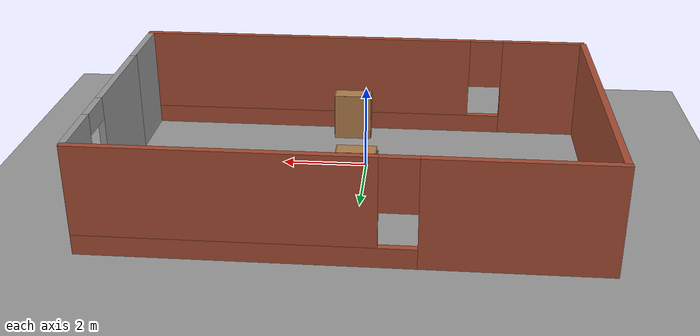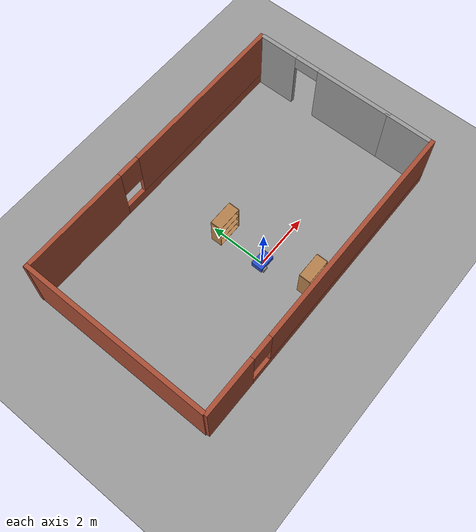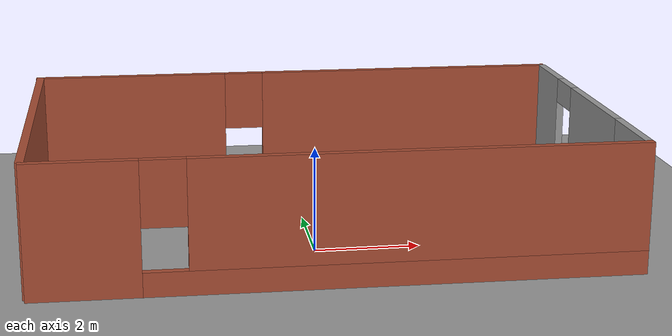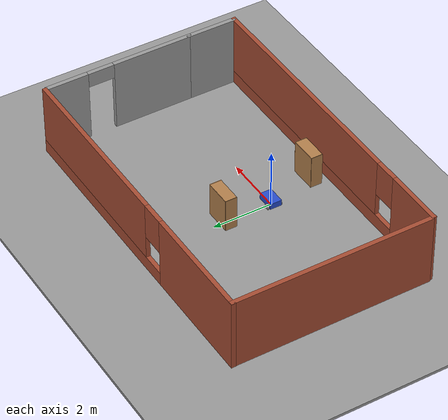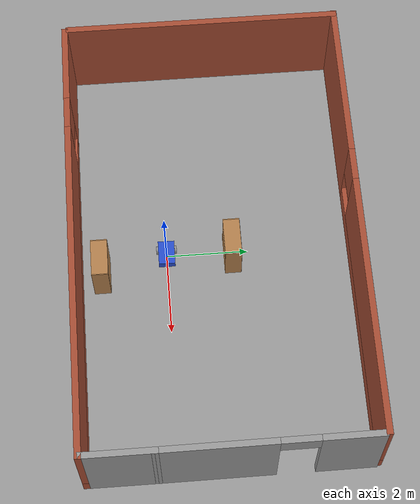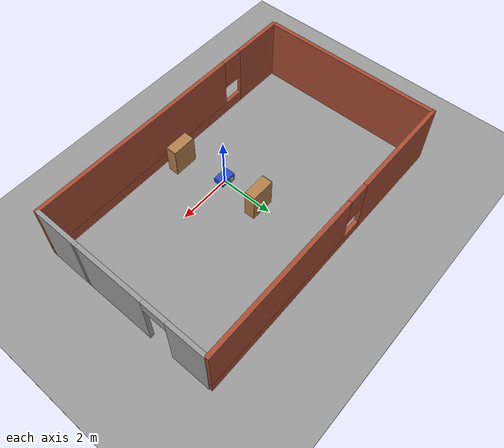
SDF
<sdf version="1.7">
 <world name="default">
  <light name="sun" type="directional">
   <pose>0 0 10 0 -0 0</pose>
   <diffuse>0.8 0.8 0.8 1</diffuse>
   <specular>0.2 0.2 0.2 1</specular>
   <attenuation>
    <range>1000</range>
    <constant>0.9</constant>
    <linear>0.01</linear>
    <quadratic>0.001</quadratic>
   </attenuation>
   <direction>-0.5 0.1 -0.9</direction>
   <spot><inner_angle>0</inner_angle><outer_angle>0</outer_angle><falloff>0</falloff></spot>
  </light>
  <model name="ground_plane">
   <static>1</static>
   <link name="link">
    <collision name="collision">
     <geometry><plane><normal>0 0 1</normal><size>100 100</size></plane></geometry>
     <surface><friction><ode><mu>100</mu><mu2>50</mu2></ode></friction></surface>
    </collision>
    <visual name="visual">
     <cast_shadows>0</cast_shadows>
     <geometry><plane><normal>0 0 1</normal><size>100 100</size></plane></geometry>
     <material>
      <script><uri>file://media/materials/scripts/gazebo.material</uri><name>Gazebo/Grey</name></script>
     </material>
    </visual>
   </link>
  </model>
  <gravity>0 0 -9.8</gravity>
  <magnetic_field>6e-06 2.3e-05 -4.2e-05</magnetic_field>
  <atmosphere type="adiabatic"/>
  <physics type="ode">
   <max_step_size>0.001</max_step_size>
   <real_time_factor>1</real_time_factor>
   <real_time_update_rate>1000</real_time_update_rate>
  </physics>
  <scene><ambient>0.4 0.4 0.4 1</ambient><background>0.7 0.7 0.7 1</background><shadows>1</shadows></scene>
  <audio><device>default</device></audio>
  <spherical_coordinates>
   <surface_model>EARTH_WGS84</surface_model>
   <latitude_deg>0</latitude_deg>
   <longitude_deg>0</longitude_deg>
   <elevation>0</elevation>
   <heading_deg>0</heading_deg>
  </spherical_coordinates>
  <model name="my_robot">
   <link name="base_footprint">
    <inertial>
     <pose>0.018182 0 0.186364 0 -0 0</pose>
     <mass>5.5</mass>
     <inertia>
      <ixx>0.678894</ixx>
      <ixy>0</ixy>
      <ixz>0.0136364</ixz>
      <iyy>0.897076</iyy>
      <iyz>0</iyz>
      <izz>0.353515</izz>
     </inertia>
    </inertial>
    <collision name="base_footprint_fixed_joint_lump__base_link_collision">
     <pose>0 0 0.2 0 -0 0</pose>
     <geometry><box><size>0.6 0.4 0.2</size></box></geometry>
    </collision>
    <collision name="base_footprint_fixed_joint_lump__caster_wheel_link_collision_1">
     <pose>0.2 0 0.05 0 -0 0</pose>
     <geometry><sphere><radius>0.05</radius></sphere></geometry>
     <surface><friction><ode><mu>0.1</mu><mu2>0.1</mu2></ode></friction></surface>
    </collision>
    <visual name="base_footprint_fixed_joint_lump__base_link_visual">
     <pose>0 0 0.2 0 -0 0</pose>
     <geometry><box><size>0.6 0.4 0.2</size></box></geometry>
     <material>
      <script><name>Gazebo/Blue</name><uri>file://media/materials/scripts/gazebo.material</uri></script>
     </material>
    </visual>
    <visual name="base_footprint_fixed_joint_lump__caster_wheel_link_visual_1">
     <pose>0.2 0 0.05 0 -0 0</pose>
     <geometry><sphere><radius>0.05</radius></sphere></geometry>
     <material>
      <script><name>Gazebo/Grey</name><uri>file://media/materials/scripts/gazebo.material</uri></script>
     </material>
    </visual>
   </link>
   <joint name="base_left_wheel_joint" type="revolute">
    <pose relative_to="base_footprint">-0.15 0.225 0.1 0 -0 0</pose>
    <parent>base_footprint</parent>
    <child>left_wheel_link</child>
    <axis>
     <xyz>0 1 0</xyz>
     <limit><lower>-1e+16</lower><upper>1e+16</upper></limit>
     <dynamics><spring_reference>0</spring_reference><spring_stiffness>0</spring_stiffness></dynamics>
    </axis>
   </joint>
   <link name="left_wheel_link">
    <pose relative_to="base_left_wheel_joint">0 0 0 0 -0 0</pose>
    <inertial>
     <pose>0 0 0 1.5708 -0 0</pose>
     <mass>1</mass>
     <inertia><ixx>0.0108333</ixx><ixy>0</ixy><ixz>0</ixz><iyy>0.0108333</iyy><iyz>0</iyz><izz>0.02</izz></inertia>
    </inertial>
    <collision name="left_wheel_link_collision">
     <pose>0 0 0 1.5708 -0 0</pose>
     <geometry><cylinder><length>0.05</length><radius>0.1</radius></cylinder></geometry>
    </collision>
    <visual name="left_wheel_link_visual">
     <pose>0 0 0 1.5708 -0 0</pose>
     <geometry><cylinder><length>0.05</length><radius>0.1</radius></cylinder></geometry>
     <material>
      <script><name>Gazebo/Grey</name><uri>file://media/materials/scripts/gazebo.material</uri></script>
     </material>
    </visual>
   </link>
   <joint name="base_right_wheel_joint" type="revolute">
    <pose relative_to="base_footprint">-0.15 -0.225 0.1 0 -0 0</pose>
    <parent>base_footprint</parent>
    <child>right_wheel_link</child>
    <axis>
     <xyz>0 1 0</xyz>
     <limit><lower>-1e+16</lower><upper>1e+16</upper></limit>
     <dynamics><spring_reference>0</spring_reference><spring_stiffness>0</spring_stiffness></dynamics>
    </axis>
   </joint>
   <link name="right_wheel_link">
    <pose relative_to="base_right_wheel_joint">0 0 0 0 -0 0</pose>
    <inertial>
     <pose>0 0 0 1.5708 -0 0</pose>
     <mass>1</mass>
     <inertia><ixx>0.0108333</ixx><ixy>0</ixy><ixz>0</ixz><iyy>0.0108333</iyy><iyz>0</iyz><izz>0.02</izz></inertia>
    </inertial>
    <collision name="right_wheel_link_collision">
     <pose>0 0 0 1.5708 -0 0</pose>
     <geometry><cylinder><length>0.05</length><radius>0.1</radius></cylinder></geometry>
    </collision>
    <visual name="right_wheel_link_visual">
     <pose>0 0 0 1.5708 -0 0</pose>
     <geometry><cylinder><length>0.05</length><radius>0.1</radius></cylinder></geometry>
     <material>
      <script><name>Gazebo/Grey</name><uri>file://media/materials/scripts/gazebo.material</uri></script>
     </material>
    </visual>
   </link>
   <static>0</static>
   <plugin name="diff_drive_controller" filename="libgazebo_ros_diff_drive.so">
    <update_rate>50</update_rate>
    <left_joint>base_left_wheel_joint</left_joint>
    <right_joint>base_right_wheel_joint</right_joint>
    <wheel_separation>0.45</wheel_separation>
    <wheel_diameter>0.2</wheel_diameter>
    <torque>5.0</torque>
    <command_topic>cmd_vel</command_topic>
    <publish_odom>1</publish_odom>
    <publish_odom_tf>1</publish_odom_tf>
    <publish_wheel_tf>1</publish_wheel_tf>
    <odometry_topic>odom</odometry_topic>
    <odometry_frame>odom</odometry_frame>
    <robot_base_frame>base_footprint</robot_base_frame>
   </plugin>
   <pose>0.009824 0.001229 0 0 0 -0.004578</pose>
  </model>
  <model name="bookshelf">
   <static>1</static>
   <link name="link">
    <inertial><mass>1</mass></inertial>
    <collision name="back">
     <pose>0 0.005 0.6 0 -0 0</pose>
     <geometry><box><size>0.9 0.01 1.2</size></box></geometry>
    </collision>
    <visual name="visual1">
     <pose>0 0.005 0.6 0 -0 0</pose>
     <geometry><box><size>0.9 0.01 1.2</size></box></geometry>
     <material>
      <script><uri>file://media/materials/scripts/gazebo.material</uri><name>Gazebo/Wood</name></script>
     </material>
    </visual>
    <collision name="left_side">
     <pose>0.45 -0.195 0.6 0 -0 0</pose>
     <geometry><box><size>0.02 0.4 1.2</size></box></geometry>
    </collision>
    <visual name="visual2">
     <pose>0.45 -0.195 0.6 0 -0 0</pose>
     <geometry><box><size>0.02 0.4 1.2</size></box></geometry>
     <material>
      <script><uri>file://media/materials/scripts/gazebo.material</uri><name>Gazebo/Wood</name></script>
     </material>
    </visual>
    <collision name="right_side">
     <pose>-0.45 -0.195 0.6 0 -0 0</pose>
     <geometry><box><size>0.02 0.4 1.2</size></box></geometry>
    </collision>
    <visual name="visual3">
     <pose>-0.45 -0.195 0.6 0 -0 0</pose>
     <geometry><box><size>0.02 0.4 1.2</size></box></geometry>
     <material>
      <script><uri>file://media/materials/scripts/gazebo.material</uri><name>Gazebo/Wood</name></script>
     </material>
    </visual>
    <collision name="bottom">
     <pose>0 -0.195 0.03 0 -0 0</pose>
     <geometry><box><size>0.88 0.4 0.06</size></box></geometry>
    </collision>
    <visual name="visual4">
     <pose>0 -0.195 0.03 0 -0 0</pose>
     <geometry><box><size>0.88 0.4 0.06</size></box></geometry>
     <material>
      <script><uri>file://media/materials/scripts/gazebo.material</uri><name>Gazebo/Wood</name></script>
     </material>
    </visual>
    <collision name="top">
     <pose>0 -0.195 1.19 0 -0 0</pose>
     <geometry><box><size>0.88 0.4 0.02</size></box></geometry>
    </collision>
    <visual name="visual5">
     <pose>0 -0.195 1.19 0 -0 0</pose>
     <geometry><box><size>0.88 0.4 0.02</size></box></geometry>
     <material>
      <script><uri>file://media/materials/scripts/gazebo.material</uri><name>Gazebo/Wood</name></script>
     </material>
    </visual>
    <collision name="low_shelf">
     <pose>0 -0.195 0.43 0 -0 0</pose>
     <geometry><box><size>0.88 0.4 0.02</size></box></geometry>
    </collision>
    <visual name="visual6">
     <pose>0 -0.195 0.43 0 -0 0</pose>
     <geometry><box><size>0.88 0.4 0.02</size></box></geometry>
     <material>
      <script><uri>file://media/materials/scripts/gazebo.material</uri><name>Gazebo/Wood</name></script>
     </material>
    </visual>
    <collision name="high_shelf">
     <pose>0 -0.195 0.8 0 -0 0</pose>
     <geometry><box><size>0.88 0.4 0.02</size></box></geometry>
    </collision>
    <visual name="visual7">
     <pose>0 -0.195 0.8 0 -0 0</pose>
     <geometry><box><size>0.88 0.4 0.02</size></box></geometry>
     <material>
      <script><uri>file://media/materials/scripts/gazebo.material</uri><name>Gazebo/Wood</name></script>
     </material>
    </visual>
   </link>
   <pose>0.106556 1.80778 0 0 -0 0</pose>
  </model>
  <model name="bookshelf_0">
   <static>1</static>
   <link name="link">
    <inertial><mass>1</mass></inertial>
    <collision name="back">
     <pose>0 0.005 0.6 0 -0 0</pose>
     <geometry><box><size>0.9 0.01 1.2</size></box></geometry>
    </collision>
    <visual name="visual1">
     <pose>0 0.005 0.6 0 -0 0</pose>
     <geometry><box><size>0.9 0.01 1.2</size></box></geometry>
     <material>
      <script><uri>file://media/materials/scripts/gazebo.material</uri><name>Gazebo/Wood</name></script>
     </material>
    </visual>
    <collision name="left_side">
     <pose>0.45 -0.195 0.6 0 -0 0</pose>
     <geometry><box><size>0.02 0.4 1.2</size></box></geometry>
    </collision>
    <visual name="visual2">
     <pose>0.45 -0.195 0.6 0 -0 0</pose>
     <geometry><box><size>0.02 0.4 1.2</size></box></geometry>
     <material>
      <script><uri>file://media/materials/scripts/gazebo.material</uri><name>Gazebo/Wood</name></script>
     </material>
    </visual>
    <collision name="right_side">
     <pose>-0.45 -0.195 0.6 0 -0 0</pose>
     <geometry><box><size>0.02 0.4 1.2</size></box></geometry>
    </collision>
    <visual name="visual3">
     <pose>-0.45 -0.195 0.6 0 -0 0</pose>
     <geometry><box><size>0.02 0.4 1.2</size></box></geometry>
     <material>
      <script><uri>file://media/materials/scripts/gazebo.material</uri><name>Gazebo/Wood</name></script>
     </material>
    </visual>
    <collision name="bottom">
     <pose>0 -0.195 0.03 0 -0 0</pose>
     <geometry><box><size>0.88 0.4 0.06</size></box></geometry>
    </collision>
    <visual name="visual4">
     <pose>0 -0.195 0.03 0 -0 0</pose>
     <geometry><box><size>0.88 0.4 0.06</size></box></geometry>
     <material>
      <script><uri>file://media/materials/scripts/gazebo.material</uri><name>Gazebo/Wood</name></script>
     </material>
    </visual>
    <collision name="top">
     <pose>0 -0.195 1.19 0 -0 0</pose>
     <geometry><box><size>0.88 0.4 0.02</size></box></geometry>
    </collision>
    <visual name="visual5">
     <pose>0 -0.195 1.19 0 -0 0</pose>
     <geometry><box><size>0.88 0.4 0.02</size></box></geometry>
     <material>
      <script><uri>file://media/materials/scripts/gazebo.material</uri><name>Gazebo/Wood</name></script>
     </material>
    </visual>
    <collision name="low_shelf">
     <pose>0 -0.195 0.43 0 -0 0</pose>
     <geometry><box><size>0.88 0.4 0.02</size></box></geometry>
    </collision>
    <visual name="visual6">
     <pose>0 -0.195 0.43 0 -0 0</pose>
     <geometry><box><size>0.88 0.4 0.02</size></box></geometry>
     <material>
      <script><uri>file://media/materials/scripts/gazebo.material</uri><name>Gazebo/Wood</name></script>
     </material>
    </visual>
    <collision name="high_shelf">
     <pose>0 -0.195 0.8 0 -0 0</pose>
     <geometry><box><size>0.88 0.4 0.02</size></box></geometry>
    </collision>
    <visual name="visual7">
     <pose>0 -0.195 0.8 0 -0 0</pose>
     <geometry><box><size>0.88 0.4 0.02</size></box></geometry>
     <material>
      <script><uri>file://media/materials/scripts/gazebo.material</uri><name>Gazebo/Wood</name></script>
     </material>
    </visual>
   </link>
   <pose>0.434304 -1.41595 0 0 -0 0</pose>
  </model>
  <model name="ground_plane_0">
   <static>1</static>
   <link name="link">
    <collision name="collision">
     <geometry><plane><normal>0 0 1</normal><size>100 100</size></plane></geometry>
     <surface><friction><ode><mu>100</mu><mu2>50</mu2></ode></friction></surface>
    </collision>
    <visual name="visual">
     <cast_shadows>0</cast_shadows>
     <geometry><plane><normal>0 0 1</normal><size>100 100</size></plane></geometry>
     <material>
      <script><uri>file://media/materials/scripts/gazebo.material</uri><name>Gazebo/Grey</name></script>
     </material>
    </visual>
   </link>
   <pose>1.62192 1.30167 0 0 -0 0</pose>
  </model>
  <model name="test">
   <pose>0.21015 1.2 0 0 -0 0</pose>
   <link name="Wall_10">
    <collision name="Wall_10_Collision">
     <geometry><box><size>6.75 0.15 2.5</size></box></geometry>
     <pose>0 0 1.25 0 -0 0</pose>
    </collision>
    <visual name="Wall_10_Visual">
     <pose>0 0 1.25 0 -0 0</pose>
     <geometry><box><size>6.75 0.15 2.5</size></box></geometry>
     <material>
      <script><uri>file://media/materials/scripts/gazebo.material</uri><name>Gazebo/Bricks</name></script>
      <ambient>1 1 1 1</ambient>
     </material>
     <meta><layer>0</layer></meta>
    </visual>
    <pose>-5.44015 0.05 0 0 -0 -1.5708</pose>
   </link>
   <link name="Wall_12">
    <collision name="Wall_12_Collision">
     <geometry><box><size>1.75 0.15 2.5</size></box></geometry>
     <pose>0 0 1.25 0 -0 0</pose>
    </collision>
    <visual name="Wall_12_Visual">
     <pose>0 0 1.25 0 -0 0</pose>
     <geometry><box><size>1.75 0.15 2.5</size></box></geometry>
     <material>
      <script><uri>file://media/materials/scripts/gazebo.material</uri><name>Gazebo/Grey</name></script>
      <ambient>1 1 1 1</ambient>
     </material>
     <meta><layer>0</layer></meta>
    </visual>
    <pose>5.44985 -2.5 0 0 -0 -1.5708</pose>
   </link>
   <link name="Wall_14">
    <pose>0.02485 -3.36 0 0 -0 0</pose>
    <visual name="Wall_14_Visual_0">
     <pose>-4.4975 0 1.25 0 -0 0</pose>
     <geometry><box><size>2.005 0.15 2.5</size></box></geometry>
     <material>
      <script><uri>file://media/materials/scripts/gazebo.material</uri><name>Gazebo/Bricks</name></script>
      <ambient>1 1 1 1</ambient>
     </material>
     <meta><layer>0</layer></meta>
    </visual>
    <collision name="Wall_14_Collision_0">
     <geometry><box><size>2.005 0.15 2.5</size></box></geometry>
     <pose>-4.4975 0 1.25 0 -0 0</pose>
    </collision>
    <visual name="Wall_14_Visual_1">
     <pose>1.0025 0 0.25 0 -0 0</pose>
     <geometry><box><size>8.995 0.15 0.5</size></box></geometry>
     <material>
      <script><uri>file://media/materials/scripts/gazebo.material</uri><name>Gazebo/Bricks</name></script>
      <ambient>1 1 1 1</ambient>
     </material>
     <meta><layer>0</layer></meta>
    </visual>
    <collision name="Wall_14_Collision_1">
     <geometry><box><size>8.995 0.15 0.5</size></box></geometry>
     <pose>1.0025 0 0.25 0 -0 0</pose>
    </collision>
    <visual name="Wall_14_Visual_2">
     <pose>1.4025 0 1.5 0 -0 0</pose>
     <geometry><box><size>8.195 0.15 2</size></box></geometry>
     <material>
      <script><uri>file://media/materials/scripts/gazebo.material</uri><name>Gazebo/Bricks</name></script>
      <ambient>1 1 1 1</ambient>
     </material>
     <meta><layer>0</layer></meta>
    </visual>
    <collision name="Wall_14_Collision_2">
     <geometry><box><size>8.195 0.15 2</size></box></geometry>
     <pose>1.4025 0 1.5 0 -0 0</pose>
    </collision>
    <visual name="Wall_14_Visual_3">
     <pose>-3.095 0 1.9 0 -0 0</pose>
     <geometry><box><size>0.8 0.15 1.2</size></box></geometry>
     <material>
      <script><uri>file://media/materials/scripts/gazebo.material</uri><name>Gazebo/Bricks</name></script>
      <ambient>1 1 1 1</ambient>
     </material>
     <meta><layer>0</layer></meta>
    </visual>
    <collision name="Wall_14_Collision_3">
     <geometry><box><size>0.8 0.15 1.2</size></box></geometry>
     <pose>-3.095 0 1.9 0 -0 0</pose>
    </collision>
   </link>
   <link name="Wall_5">
    <pose>-0.02515 3.36 0 0 -0 0</pose>
    <visual name="Wall_5_Visual_0">
     <pose>-3.5175 0 1.25 0 -0 0</pose>
     <geometry><box><size>3.965 0.15 2.5</size></box></geometry>
     <material>
      <script><uri>file://media/materials/scripts/gazebo.material</uri><name>Gazebo/Bricks</name></script>
      <ambient>1 1 1 1</ambient>
     </material>
     <meta><layer>0</layer></meta>
    </visual>
    <collision name="Wall_5_Collision_0">
     <geometry><box><size>3.965 0.15 2.5</size></box></geometry>
     <pose>-3.5175 0 1.25 0 -0 0</pose>
    </collision>
    <visual name="Wall_5_Visual_1">
     <pose>1.9825 0 0.25 0 -0 0</pose>
     <geometry><box><size>7.035 0.15 0.5</size></box></geometry>
     <material>
      <script><uri>file://media/materials/scripts/gazebo.material</uri><name>Gazebo/Bricks</name></script>
      <ambient>1 1 1 1</ambient>
     </material>
     <meta><layer>0</layer></meta>
    </visual>
    <collision name="Wall_5_Collision_1">
     <geometry><box><size>7.035 0.15 0.5</size></box></geometry>
     <pose>1.9825 0 0.25 0 -0 0</pose>
    </collision>
    <visual name="Wall_5_Visual_2">
     <pose>2.3825 0 1.5 0 -0 0</pose>
     <geometry><box><size>6.235 0.15 2</size></box></geometry>
     <material>
      <script><uri>file://media/materials/scripts/gazebo.material</uri><name>Gazebo/Bricks</name></script>
      <ambient>1 1 1 1</ambient>
     </material>
     <meta><layer>0</layer></meta>
    </visual>
    <collision name="Wall_5_Collision_2">
     <geometry><box><size>6.235 0.15 2</size></box></geometry>
     <pose>2.3825 0 1.5 0 -0 0</pose>
    </collision>
    <visual name="Wall_5_Visual_3">
     <pose>-1.135 0 1.9 0 -0 0</pose>
     <geometry><box><size>0.8 0.15 1.2</size></box></geometry>
     <material>
      <script><uri>file://media/materials/scripts/gazebo.material</uri><name>Gazebo/Bricks</name></script>
      <ambient>1 1 1 1</ambient>
     </material>
     <meta><layer>0</layer></meta>
    </visual>
    <collision name="Wall_5_Collision_3">
     <geometry><box><size>0.8 0.15 1.2</size></box></geometry>
     <pose>-1.135 0 1.9 0 -0 0</pose>
    </collision>
   </link>
   <link name="Wall_8">
    <pose>5.43985 0.775 0 0 -0 -1.56677</pose>
    <visual name="Wall_8_Visual_0">
     <pose>-1.84231 0 1.25 0 -0 0</pose>
     <geometry><box><size>1.43543 0.15 2.5</size></box></geometry>
     <material>
      <script><uri>file://media/materials/scripts/gazebo.material</uri><name>Gazebo/Grey</name></script>
      <ambient>1 1 1 1</ambient>
     </material>
     <meta><layer>0</layer></meta>
    </visual>
    <collision name="Wall_8_Collision_0">
     <geometry><box><size>1.43543 0.15 2.5</size></box></geometry>
     <pose>-1.84231 0 1.25 0 -0 0</pose>
    </collision>
    <visual name="Wall_8_Visual_1">
     <pose>1.16771 0 1.25 0 -0 0</pose>
     <geometry><box><size>2.78461 0.15 2.5</size></box></geometry>
     <material>
      <script><uri>file://media/materials/scripts/gazebo.material</uri><name>Gazebo/Grey</name></script>
      <ambient>1 1 1 1</ambient>
     </material>
     <meta><layer>0</layer></meta>
    </visual>
    <collision name="Wall_8_Collision_1">
     <geometry><box><size>2.78461 0.15 2.5</size></box></geometry>
     <pose>1.16771 0 1.25 0 -0 0</pose>
    </collision>
    <visual name="Wall_8_Visual_2">
     <pose>-0.674592 0 2.25 0 -0 0</pose>
     <geometry><box><size>0.9 0.15 0.5</size></box></geometry>
     <material>
      <script><uri>file://media/materials/scripts/gazebo.material</uri><name>Gazebo/Grey</name></script>
      <ambient>1 1 1 1</ambient>
     </material>
     <meta><layer>0</layer></meta>
    </visual>
    <collision name="Wall_8_Collision_2">
     <geometry><box><size>0.9 0.15 0.5</size></box></geometry>
     <pose>-0.674592 0 2.25 0 -0 0</pose>
    </collision>
   </link>
   <static>1</static>
  </model>
 </world>
</sdf>
